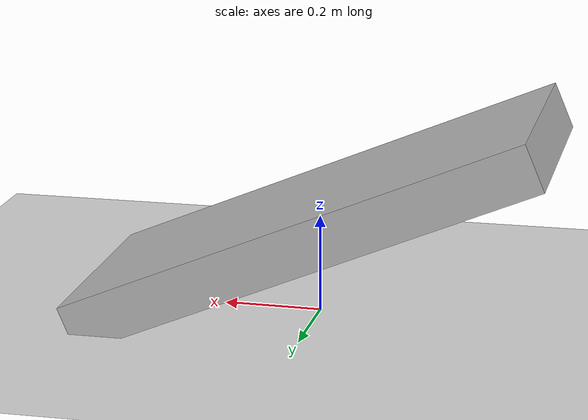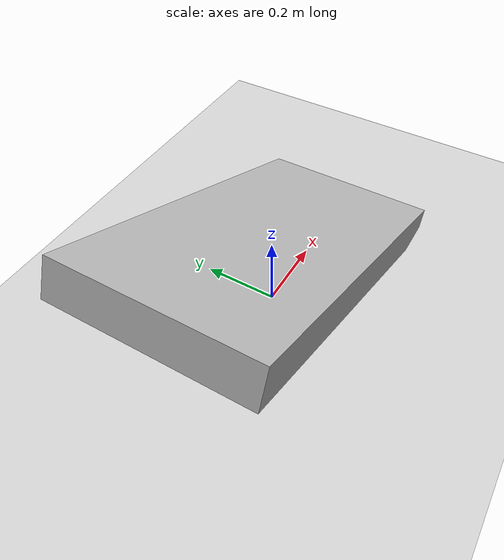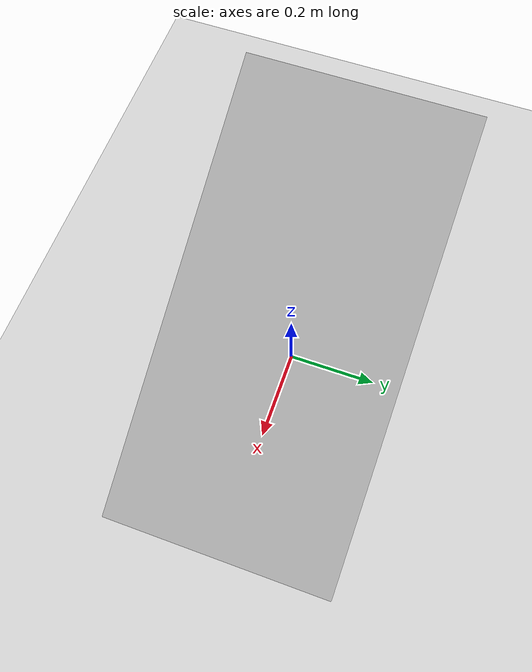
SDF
<?xml version="1.0" ?>
<sdf version="1.4">
  <!-- We use a custom world for the robotis mannipulatorH so that the camera angle is launched correctly -->

  <world name="default">
    <include>
      <uri>model://ground_plane</uri>
    </include>

    <!-- Global light source -->
    <include>
      <uri>model://sun</uri>
    </include>

    <model name="box">
      <static>true</static>

      <pose>0 0 0.2 0 0.4 0</pose>
      <link name="link">
        <collision name="collision">
          <geometry>
            <box>
              <size>1 0.5 .1</size>
            </box>
          </geometry>
        </collision>
        <visual name="visual">
          <geometry>
            <box>
              <size>1 0.5 .1</size>
            </box>
          </geometry>
        </visual>
      </link>
    </model>

    <!-- Focus camera on tall pendulum -->
    <gui fullscreen='0'>
      <camera name='user_camera'>
	      <pose> 2.0 -2.0 1.2 0.0 0.275643 2.356190 </pose>
	      <view_controller>orbit</view_controller>
      </camera>
    </gui>

  </world>
</sdf>
